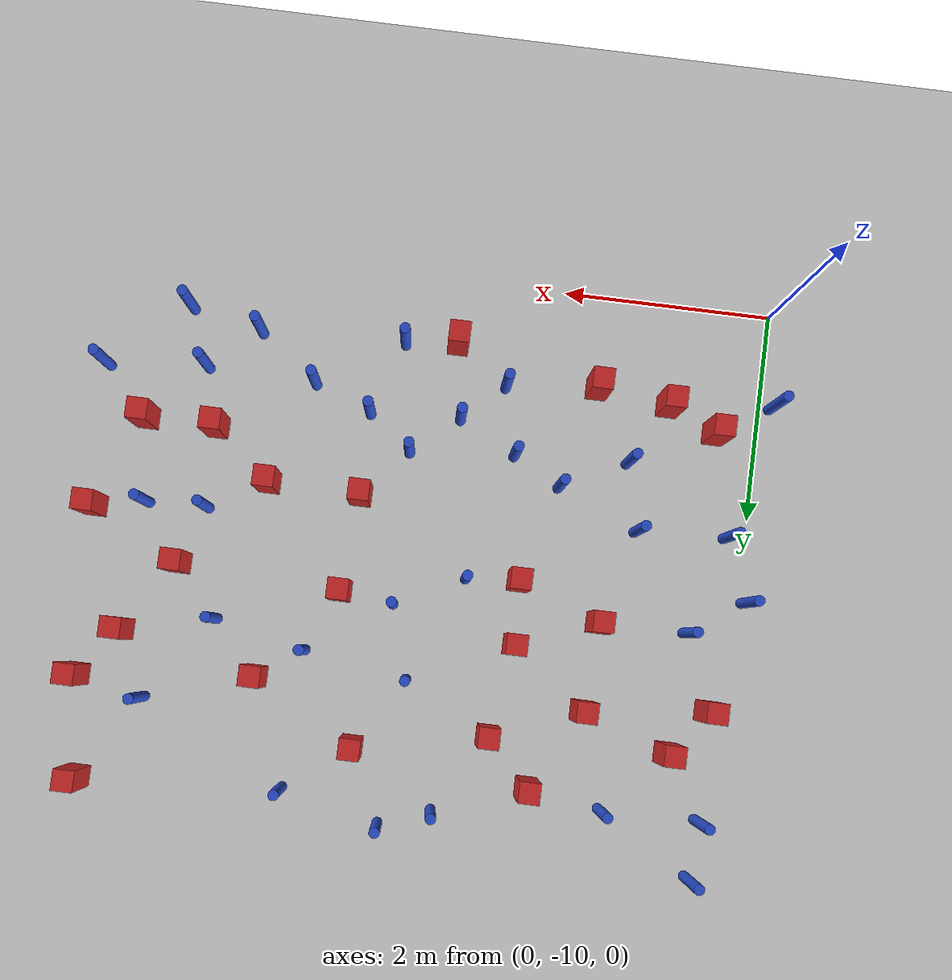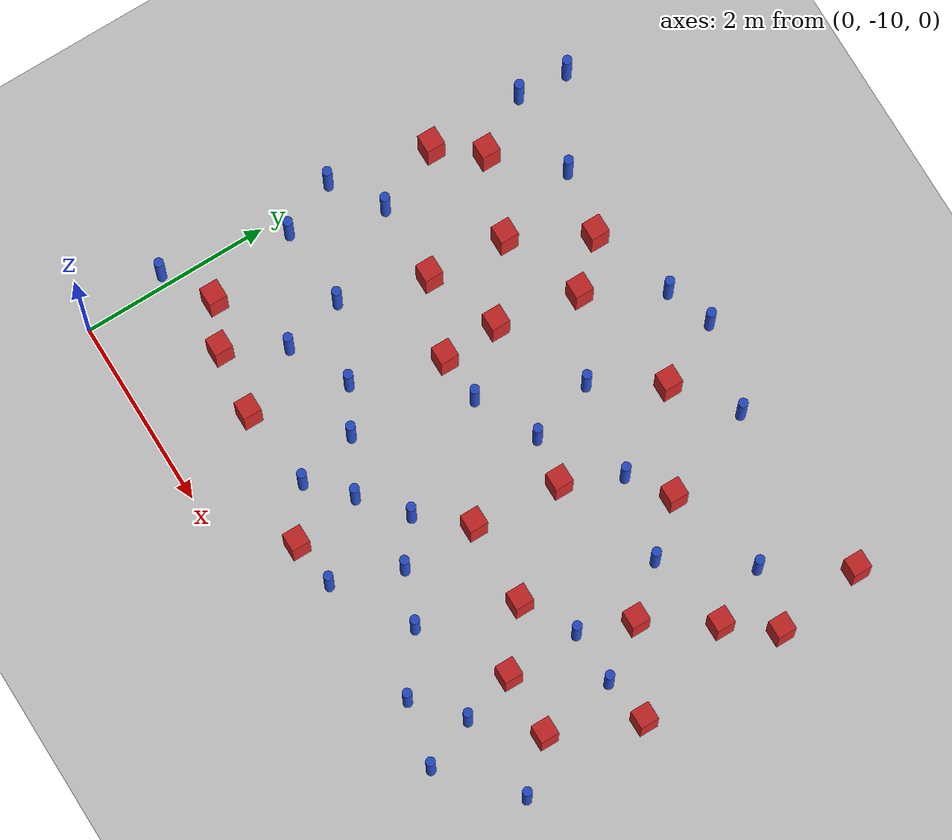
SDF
<sdf version="1.6">
 <world name="default">
  <model name="ground_plane">
   <static>1</static>
   <link name="link">
    <collision name="collision">
     <geometry><plane><normal>0 0 1</normal><size>100 100</size></plane></geometry>
     <surface><friction><ode><mu>100</mu><mu2>50</mu2></ode></friction></surface>
    </collision>
    <visual name="visual">
     <cast_shadows>0</cast_shadows>
     <geometry><plane><normal>0 0 1</normal><size>100 100</size></plane></geometry>
     <material>
      <ambient>1.0 1.0 1.0 1.0</ambient>
      <diffuse>0.8 0.8 0.8 1.0</diffuse>
      <specular>0.01 0.01 0.01 1.000000</specular>
     </material>
    </visual>
   </link>
  </model>
  <model name="pole_obstacle1">
   <static>true</static>
   <pose>1.84656176766 -8.08792494594 7.38925637345e-09 -8.47170692798e-08 1.24976764881e-08 -1.74513093027e-07</pose>
   <link name="link">
    <pose>0 0 0.3 0 -0 0</pose>
    <inertial>
     <mass>1</mass>
     <inertia><ixx>0.145833</ixx><ixy>0</ixy><ixz>0</ixz><iyy>0.145833</iyy><iyz>0</iyz><izz>0.125</izz></inertia>
    </inertial>
    <collision name="collision">
     <geometry><cylinder><radius>0.05</radius><length>.6</length></cylinder></geometry>
    </collision>
    <visual name="visual">
     <geometry><cylinder><radius>0.05</radius><length>.6</length></cylinder></geometry>
     <material>
      <script><name>Gazebo/Blue</name><uri>file://media/materials/scripts/gazebo.material</uri></script>
     </material>
    </visual>
   </link>
  </model>
  <model name="square_post_obstacle5">
   <static>true</static>
   <pose>2.09614323917 -6.53388835979 1.91545236811e-07 -7.35059704564e-06 1.12565212e-07 2.39332434364e-05</pose>
   <link name="link">
    <pose>0 0 0.25 0 -0 0</pose>
    <inertial>
     <mass>100</mass>
     <inertia>
      <ixx>0.166667</ixx>
      <ixy>0</ixy>
      <ixz>0</ixz>
      <iyy>0.166667</iyy>
      <iyz>0</iyz>
      <izz>0.166667</izz>
     </inertia>
    </inertial>
    <collision name="collision"><geometry><box><size>.2 .2 .5</size></box></geometry></collision>
    <visual name="visual">
     <geometry><box><size>.2 .2 .5</size></box></geometry>
     <material>
      <script><name>Gazebo/Red</name><uri>file://media/materials/scripts/gazebo.material</uri></script>
     </material>
    </visual>
   </link>
  </model>
  <model name="pole_obstacle7">
   <static>true</static>
   <pose>4.0634409271 -6.24032511212 7.38925637345e-09 -8.47170692796e-08 1.24976764786e-08 -1.74513093032e-07</pose>
   <link name="link">
    <pose>0 0 0.3 0 -0 0</pose>
    <inertial>
     <mass>1</mass>
     <inertia><ixx>0.145833</ixx><ixy>0</ixy><ixz>0</ixz><iyy>0.145833</iyy><iyz>0</iyz><izz>0.125</izz></inertia>
    </inertial>
    <collision name="collision">
     <geometry><cylinder><radius>0.05</radius><length>.6</length></cylinder></geometry>
    </collision>
    <visual name="visual">
     <geometry><cylinder><radius>0.05</radius><length>.6</length></cylinder></geometry>
     <material>
      <script><name>Gazebo/Blue</name><uri>file://media/materials/scripts/gazebo.material</uri></script>
     </material>
    </visual>
   </link>
  </model>
  <model name="square_post_obstacle9">
   <static>true</static>
   <pose>5.85793172006 -8.27280279421 1.91545236811e-07 -7.35059704564e-06 1.12565212e-07 2.39332434364e-05</pose>
   <link name="link">
    <pose>0 0 0.25 0 -0 0</pose>
    <inertial>
     <mass>100</mass>
     <inertia>
      <ixx>0.166667</ixx>
      <ixy>0</ixy>
      <ixz>0</ixz>
      <iyy>0.166667</iyy>
      <iyz>0</iyz>
      <izz>0.166667</izz>
     </inertia>
    </inertial>
    <collision name="collision"><geometry><box><size>.2 .2 .5</size></box></geometry></collision>
    <visual name="visual">
     <geometry><box><size>.2 .2 .5</size></box></geometry>
     <material>
      <script><name>Gazebo/Red</name><uri>file://media/materials/scripts/gazebo.material</uri></script>
     </material>
    </visual>
   </link>
  </model>
  <model name="square_post_obstacle10">
   <static>true</static>
   <pose>5.36092422646 -6.9205437314 1.91545236811e-07 -7.35059704564e-06 1.12565212e-07 2.39332434364e-05</pose>
   <link name="link">
    <pose>0 0 0.25 0 -0 0</pose>
    <inertial>
     <mass>100</mass>
     <inertia>
      <ixx>0.166667</ixx>
      <ixy>0</ixy>
      <ixz>0</ixz>
      <iyy>0.166667</iyy>
      <iyz>0</iyz>
      <izz>0.166667</izz>
     </inertia>
    </inertial>
    <collision name="collision"><geometry><box><size>.2 .2 .5</size></box></geometry></collision>
    <visual name="visual">
     <geometry><box><size>.2 .2 .5</size></box></geometry>
     <material>
      <script><name>Gazebo/Red</name><uri>file://media/materials/scripts/gazebo.material</uri></script>
     </material>
    </visual>
   </link>
  </model>
  <model name="pole_obstacle8">
   <static>true</static>
   <pose>3.30957384322 -8.24945911556 7.38925637345e-09 -8.47170692793e-08 1.24976764408e-08 -1.74513093041e-07</pose>
   <link name="link">
    <pose>0 0 0.3 0 -0 0</pose>
    <inertial>
     <mass>1</mass>
     <inertia><ixx>0.145833</ixx><ixy>0</ixy><ixz>0</ixz><iyy>0.145833</iyy><iyz>0</iyz><izz>0.125</izz></inertia>
    </inertial>
    <collision name="collision">
     <geometry><cylinder><radius>0.05</radius><length>.6</length></cylinder></geometry>
    </collision>
    <visual name="visual">
     <geometry><cylinder><radius>0.05</radius><length>.6</length></cylinder></geometry>
     <material>
      <script><name>Gazebo/Blue</name><uri>file://media/materials/scripts/gazebo.material</uri></script>
     </material>
    </visual>
   </link>
  </model>
  <model name="pole_obstacle12">
   <static>true</static>
   <pose>5.3391453261 -8.83431896908 7.38925637345e-09 -8.471706928e-08 1.24976765081e-08 -1.74513093015e-07</pose>
   <link name="link">
    <pose>0 0 0.3 0 -0 0</pose>
    <inertial>
     <mass>1</mass>
     <inertia><ixx>0.145833</ixx><ixy>0</ixy><ixz>0</ixz><iyy>0.145833</iyy><iyz>0</iyz><izz>0.125</izz></inertia>
    </inertial>
    <collision name="collision">
     <geometry><cylinder><radius>0.05</radius><length>.6</length></cylinder></geometry>
    </collision>
    <visual name="visual">
     <geometry><cylinder><radius>0.05</radius><length>.6</length></cylinder></geometry>
     <material>
      <script><name>Gazebo/Blue</name><uri>file://media/materials/scripts/gazebo.material</uri></script>
     </material>
    </visual>
   </link>
  </model>
  <model name="pole_obstacle17">
   <static>true</static>
   <pose>2.30554568047 -8.33789210548 7.38925637345e-09 -8.47170692793e-08 1.24976764408e-08 -1.74513093041e-07</pose>
   <link name="link">
    <pose>0 0 0.3 0 -0 0</pose>
    <inertial>
     <mass>1</mass>
     <inertia><ixx>0.145833</ixx><ixy>0</ixy><ixz>0</ixz><iyy>0.145833</iyy><iyz>0</iyz><izz>0.125</izz></inertia>
    </inertial>
    <collision name="collision">
     <geometry><cylinder><radius>0.05</radius><length>.6</length></cylinder></geometry>
    </collision>
    <visual name="visual">
     <geometry><cylinder><radius>0.05</radius><length>.6</length></cylinder></geometry>
     <material>
      <script><name>Gazebo/Blue</name><uri>file://media/materials/scripts/gazebo.material</uri></script>
     </material>
    </visual>
   </link>
  </model>
  <model name="pole_obstacle24">
   <static>true</static>
   <pose>3.07362462212 -6.0809814464 7.38925637345e-09 -8.47170692798e-08 1.24976765033e-08 -1.74513093019e-07</pose>
   <link name="link">
    <pose>0 0 0.3 0 -0 0</pose>
    <inertial>
     <mass>1</mass>
     <inertia><ixx>0.145833</ixx><ixy>0</ixy><ixz>0</ixz><iyy>0.145833</iyy><iyz>0</iyz><izz>0.125</izz></inertia>
    </inertial>
    <collision name="collision">
     <geometry><cylinder><radius>0.05</radius><length>.6</length></cylinder></geometry>
    </collision>
    <visual name="visual">
     <geometry><cylinder><radius>0.05</radius><length>.6</length></cylinder></geometry>
     <material>
      <script><name>Gazebo/Blue</name><uri>file://media/materials/scripts/gazebo.material</uri></script>
     </material>
    </visual>
   </link>
  </model>
  <model name="square_post_obstacle32">
   <static>true</static>
   <pose>1.59057611791 -9.09107830113 1.91545236811e-07 -7.35059704564e-06 1.12565212e-07 2.39332434364e-05</pose>
   <link name="link">
    <pose>0 0 0.25 0 -0 0</pose>
    <inertial>
     <mass>100</mass>
     <inertia>
      <ixx>0.166667</ixx>
      <ixy>0</ixy>
      <ixz>0</ixz>
      <iyy>0.166667</iyy>
      <iyz>0</iyz>
      <izz>0.166667</izz>
     </inertia>
    </inertial>
    <collision name="collision"><geometry><box><size>.2 .2 .5</size></box></geometry></collision>
    <visual name="visual">
     <geometry><box><size>.2 .2 .5</size></box></geometry>
     <material>
      <script><name>Gazebo/Red</name><uri>file://media/materials/scripts/gazebo.material</uri></script>
     </material>
    </visual>
   </link>
  </model>
  <model name="pole_obstacle33">
   <static>true</static>
   <pose>3.17560685314 -4.70304453732 7.38925637345e-09 -8.47170692798e-08 1.24976765033e-08 -1.74513093019e-07</pose>
   <link name="link">
    <pose>0 0 0.3 0 -0 0</pose>
    <inertial>
     <mass>1</mass>
     <inertia><ixx>0.145833</ixx><ixy>0</ixy><ixz>0</ixz><iyy>0.145833</iyy><iyz>0</iyz><izz>0.125</izz></inertia>
    </inertial>
    <collision name="collision">
     <geometry><cylinder><radius>0.05</radius><length>.6</length></cylinder></geometry>
    </collision>
    <visual name="visual">
     <geometry><cylinder><radius>0.05</radius><length>.6</length></cylinder></geometry>
     <material>
      <script><name>Gazebo/Blue</name><uri>file://media/materials/scripts/gazebo.material</uri></script>
     </material>
    </visual>
   </link>
  </model>
  <model name="pole_obstacle38">
   <static>true</static>
   <pose>4.28640930133 -8.79934870604 7.38925637345e-09 -8.471706928e-08 1.24976765081e-08 -1.74513093015e-07</pose>
   <link name="link">
    <pose>0 0 0.3 0 -0 0</pose>
    <inertial>
     <mass>1</mass>
     <inertia><ixx>0.145833</ixx><ixy>0</ixy><ixz>0</ixz><iyy>0.145833</iyy><iyz>0</iyz><izz>0.125</izz></inertia>
    </inertial>
    <collision name="collision">
     <geometry><cylinder><radius>0.05</radius><length>.6</length></cylinder></geometry>
    </collision>
    <visual name="visual">
     <geometry><cylinder><radius>0.05</radius><length>.6</length></cylinder></geometry>
     <material>
      <script><name>Gazebo/Blue</name><uri>file://media/materials/scripts/gazebo.material</uri></script>
     </material>
    </visual>
   </link>
  </model>
  <model name="pole_obstacle41">
   <static>true</static>
   <pose>5.73901190787 -7.46126825313 7.38925637345e-09 -8.47170692796e-08 1.24976764786e-08 -1.74513093032e-07</pose>
   <link name="link">
    <pose>0 0 0.3 0 -0 0</pose>
    <inertial>
     <mass>1</mass>
     <inertia><ixx>0.145833</ixx><ixy>0</ixy><ixz>0</ixz><iyy>0.145833</iyy><iyz>0</iyz><izz>0.125</izz></inertia>
    </inertial>
    <collision name="collision">
     <geometry><cylinder><radius>0.05</radius><length>.6</length></cylinder></geometry>
    </collision>
    <visual name="visual">
     <geometry><cylinder><radius>0.05</radius><length>.6</length></cylinder></geometry>
     <material>
      <script><name>Gazebo/Blue</name><uri>file://media/materials/scripts/gazebo.material</uri></script>
     </material>
    </visual>
   </link>
  </model>
  <model name="square_post_obstacle44">
   <static>true</static>
   <pose>0.421644965534 -8.79044486293 1.91545236811e-07 -7.35059704564e-06 1.12565212e-07 2.39332434364e-05</pose>
   <link name="link">
    <pose>0 0 0.25 0 -0 0</pose>
    <inertial>
     <mass>100</mass>
     <inertia>
      <ixx>0.166667</ixx>
      <ixy>0</ixy>
      <ixz>0</ixz>
      <iyy>0.166667</iyy>
      <iyz>0</iyz>
      <izz>0.166667</izz>
     </inertia>
    </inertial>
    <collision name="collision"><geometry><box><size>.2 .2 .5</size></box></geometry></collision>
    <visual name="visual">
     <geometry><box><size>.2 .2 .5</size></box></geometry>
     <material>
      <script><name>Gazebo/Red</name><uri>file://media/materials/scripts/gazebo.material</uri></script>
     </material>
    </visual>
   </link>
  </model>
  <model name="pole_obstacle47">
   <static>true</static>
   <pose>2.6904154207 -4.88625788499 7.38925637345e-09 -8.47170692798e-08 1.24976765033e-08 -1.74513093019e-07</pose>
   <link name="link">
    <pose>0 0 0.3 0 -0 0</pose>
    <inertial>
     <mass>1</mass>
     <inertia><ixx>0.145833</ixx><ixy>0</ixy><ixz>0</ixz><iyy>0.145833</iyy><iyz>0</iyz><izz>0.125</izz></inertia>
    </inertial>
    <collision name="collision">
     <geometry><cylinder><radius>0.05</radius><length>.6</length></cylinder></geometry>
    </collision>
    <visual name="visual">
     <geometry><cylinder><radius>0.05</radius><length>.6</length></cylinder></geometry>
     <material>
      <script><name>Gazebo/Blue</name><uri>file://media/materials/scripts/gazebo.material</uri></script>
     </material>
    </visual>
   </link>
  </model>
  <model name="pole_obstacle49">
   <static>true</static>
   <pose>2.46475214023 -8.99408442169 7.38925637345e-09 -8.47170692793e-08 1.24976764408e-08 -1.74513093041e-07</pose>
   <link name="link">
    <pose>0 0 0.3 0 -0 0</pose>
    <inertial>
     <mass>1</mass>
     <inertia><ixx>0.145833</ixx><ixy>0</ixy><ixz>0</ixz><iyy>0.145833</iyy><iyz>0</iyz><izz>0.125</izz></inertia>
    </inertial>
    <collision name="collision">
     <geometry><cylinder><radius>0.05</radius><length>.6</length></cylinder></geometry>
    </collision>
    <visual name="visual">
     <geometry><cylinder><radius>0.05</radius><length>.6</length></cylinder></geometry>
     <material>
      <script><name>Gazebo/Blue</name><uri>file://media/materials/scripts/gazebo.material</uri></script>
     </material>
    </visual>
   </link>
  </model>
  <model name="square_post_obstacle50">
   <static>true</static>
   <pose>3.71933753306 -7.77678202392 1.91545236811e-07 -7.35059704564e-06 1.12565212e-07 2.39332434364e-05</pose>
   <link name="link">
    <pose>0 0 0.25 0 -0 0</pose>
    <inertial>
     <mass>100</mass>
     <inertia>
      <ixx>0.166667</ixx>
      <ixy>0</ixy>
      <ixz>0</ixz>
      <iyy>0.166667</iyy>
      <iyz>0</iyz>
      <izz>0.166667</izz>
     </inertia>
    </inertial>
    <collision name="collision"><geometry><box><size>.2 .2 .5</size></box></geometry></collision>
    <visual name="visual">
     <geometry><box><size>.2 .2 .5</size></box></geometry>
     <material>
      <script><name>Gazebo/Red</name><uri>file://media/materials/scripts/gazebo.material</uri></script>
     </material>
    </visual>
   </link>
  </model>
  <model name="square_post_obstacle53">
   <static>true</static>
   <pose>3.79498157791 -6.84104893497 1.91545236811e-07 -7.35059704564e-06 1.12565212e-07 2.39332434364e-05</pose>
   <link name="link">
    <pose>0 0 0.25 0 -0 0</pose>
    <inertial>
     <mass>100</mass>
     <inertia>
      <ixx>0.166667</ixx>
      <ixy>0</ixy>
      <ixz>0</ixz>
      <iyy>0.166667</iyy>
      <iyz>0</iyz>
      <izz>0.166667</izz>
     </inertia>
    </inertial>
    <collision name="collision"><geometry><box><size>.2 .2 .5</size></box></geometry></collision>
    <visual name="visual">
     <geometry><box><size>.2 .2 .5</size></box></geometry>
     <material>
      <script><name>Gazebo/Red</name><uri>file://media/materials/scripts/gazebo.material</uri></script>
     </material>
    </visual>
   </link>
  </model>
  <model name="square_post_obstacle55">
   <static>true</static>
   <pose>0.546747500283 -5.70007940332 1.91545236811e-07 -7.35059704564e-06 1.12565212e-07 2.39332434364e-05</pose>
   <link name="link">
    <pose>0 0 0.25 0 -0 0</pose>
    <inertial>
     <mass>100</mass>
     <inertia>
      <ixx>0.166667</ixx>
      <ixy>0</ixy>
      <ixz>0</ixz>
      <iyy>0.166667</iyy>
      <iyz>0</iyz>
      <izz>0.166667</izz>
     </inertia>
    </inertial>
    <collision name="collision"><geometry><box><size>.2 .2 .5</size></box></geometry></collision>
    <visual name="visual">
     <geometry><box><size>.2 .2 .5</size></box></geometry>
     <material>
      <script><name>Gazebo/Red</name><uri>file://media/materials/scripts/gazebo.material</uri></script>
     </material>
    </visual>
   </link>
  </model>
  <model name="pole_obstacle55">
   <static>true</static>
   <pose>2.6259745076 -7.10265740719 7.38925637345e-09 -8.47170692798e-08 1.24976765033e-08 -1.74513093019e-07</pose>
   <link name="link">
    <pose>0 0 0.3 0 -0 0</pose>
    <inertial>
     <mass>1</mass>
     <inertia><ixx>0.145833</ixx><ixy>0</ixy><ixz>0</ixz><iyy>0.145833</iyy><iyz>0</iyz><izz>0.125</izz></inertia>
    </inertial>
    <collision name="collision">
     <geometry><cylinder><radius>0.05</radius><length>.6</length></cylinder></geometry>
    </collision>
    <visual name="visual">
     <geometry><cylinder><radius>0.05</radius><length>.6</length></cylinder></geometry>
     <material>
      <script><name>Gazebo/Blue</name><uri>file://media/materials/scripts/gazebo.material</uri></script>
     </material>
    </visual>
   </link>
  </model>
  <model name="square_post_obstacle60">
   <static>true</static>
   <pose>2.24715864053 -5.65445498987 1.91545236811e-07 -7.35059704564e-06 1.12565212e-07 2.39332434364e-05</pose>
   <link name="link">
    <pose>0 0 0.25 0 -0 0</pose>
    <inertial>
     <mass>100</mass>
     <inertia>
      <ixx>0.166667</ixx>
      <ixy>0</ixy>
      <ixz>0</ixz>
      <iyy>0.166667</iyy>
      <iyz>0</iyz>
      <izz>0.166667</izz>
     </inertia>
    </inertial>
    <collision name="collision"><geometry><box><size>.2 .2 .5</size></box></geometry></collision>
    <visual name="visual">
     <geometry><box><size>.2 .2 .5</size></box></geometry>
     <material>
      <script><name>Gazebo/Red</name><uri>file://media/materials/scripts/gazebo.material</uri></script>
     </material>
    </visual>
   </link>
  </model>
  <model name="square_post_obstacle61">
   <static>true</static>
   <pose>0.893318830847 -9.00403820079 1.91545236811e-07 -7.35059704564e-06 1.12565212e-07 2.39332434364e-05</pose>
   <link name="link">
    <pose>0 0 0.25 0 -0 0</pose>
    <inertial>
     <mass>100</mass>
     <inertia>
      <ixx>0.166667</ixx>
      <ixy>0</ixy>
      <ixz>0</ixz>
      <iyy>0.166667</iyy>
      <iyz>0</iyz>
      <izz>0.166667</izz>
     </inertia>
    </inertial>
    <collision name="collision"><geometry><box><size>.2 .2 .5</size></box></geometry></collision>
    <visual name="visual">
     <geometry><box><size>.2 .2 .5</size></box></geometry>
     <material>
      <script><name>Gazebo/Red</name><uri>file://media/materials/scripts/gazebo.material</uri></script>
     </material>
    </visual>
   </link>
  </model>
  <model name="pole_obstacle58">
   <static>true</static>
   <pose>0.232287770855 -4.56479041535 7.38925637345e-09 -8.471706928e-08 1.24976765124e-08 -1.74513093014e-07</pose>
   <link name="link">
    <pose>0 0 0.3 0 -0 0</pose>
    <inertial>
     <mass>1</mass>
     <inertia><ixx>0.145833</ixx><ixy>0</ixy><ixz>0</ixz><iyy>0.145833</iyy><iyz>0</iyz><izz>0.125</izz></inertia>
    </inertial>
    <collision name="collision">
     <geometry><cylinder><radius>0.05</radius><length>.6</length></cylinder></geometry>
    </collision>
    <visual name="visual">
     <geometry><cylinder><radius>0.05</radius><length>.6</length></cylinder></geometry>
     <material>
      <script><name>Gazebo/Blue</name><uri>file://media/materials/scripts/gazebo.material</uri></script>
     </material>
    </visual>
   </link>
  </model>
  <model name="square_post_obstacle64">
   <static>true</static>
   <pose>1.82378218965 -5.21049882655 1.91545236811e-07 -7.35059704564e-06 1.12565212e-07 2.39332434364e-05</pose>
   <link name="link">
    <pose>0 0 0.25 0 -0 0</pose>
    <inertial>
     <mass>100</mass>
     <inertia>
      <ixx>0.166667</ixx>
      <ixy>0</ixy>
      <ixz>0</ixz>
      <iyy>0.166667</iyy>
      <iyz>0</iyz>
      <izz>0.166667</izz>
     </inertia>
    </inertial>
    <collision name="collision"><geometry><box><size>.2 .2 .5</size></box></geometry></collision>
    <visual name="visual">
     <geometry><box><size>.2 .2 .5</size></box></geometry>
     <material>
      <script><name>Gazebo/Red</name><uri>file://media/materials/scripts/gazebo.material</uri></script>
     </material>
    </visual>
   </link>
  </model>
  <model name="square_post_obstacle65">
   <static>true</static>
   <pose>6.24072449241 -7.36965737709 1.91545236811e-07 -7.35059704564e-06 1.12565212e-07 2.39332434364e-05</pose>
   <link name="link">
    <pose>0 0 0.25 0 -0 0</pose>
    <inertial>
     <mass>100</mass>
     <inertia>
      <ixx>0.166667</ixx>
      <ixy>0</ixy>
      <ixz>0</ixz>
      <iyy>0.166667</iyy>
      <iyz>0</iyz>
      <izz>0.166667</izz>
     </inertia>
    </inertial>
    <collision name="collision"><geometry><box><size>.2 .2 .5</size></box></geometry></collision>
    <visual name="visual">
     <geometry><box><size>.2 .2 .5</size></box></geometry>
     <material>
      <script><name>Gazebo/Red</name><uri>file://media/materials/scripts/gazebo.material</uri></script>
     </material>
    </visual>
   </link>
  </model>
  <model name="pole_obstacle64">
   <static>true</static>
   <pose>3.72890523248 -8.57860771985 7.38925637345e-09 -8.47170692793e-08 1.24976764408e-08 -1.74513093041e-07</pose>
   <link name="link">
    <pose>0 0 0.3 0 -0 0</pose>
    <inertial>
     <mass>1</mass>
     <inertia><ixx>0.145833</ixx><ixy>0</ixy><ixz>0</ixz><iyy>0.145833</iyy><iyz>0</iyz><izz>0.125</izz></inertia>
    </inertial>
    <collision name="collision">
     <geometry><cylinder><radius>0.05</radius><length>.6</length></cylinder></geometry>
    </collision>
    <visual name="visual">
     <geometry><cylinder><radius>0.05</radius><length>.6</length></cylinder></geometry>
     <material>
      <script><name>Gazebo/Blue</name><uri>file://media/materials/scripts/gazebo.material</uri></script>
     </material>
    </visual>
   </link>
  </model>
  <model name="pole_obstacle70">
   <static>true</static>
   <pose>0.492945236174 -6.84806069235 7.38925637345e-09 -8.471706928e-08 1.24976765095e-08 -1.74513093014e-07</pose>
   <link name="link">
    <pose>0 0 0.3 0 -0 0</pose>
    <inertial>
     <mass>1</mass>
     <inertia><ixx>0.145833</ixx><ixy>0</ixy><ixz>0</ixz><iyy>0.145833</iyy><iyz>0</iyz><izz>0.125</izz></inertia>
    </inertial>
    <collision name="collision">
     <geometry><cylinder><radius>0.05</radius><length>.6</length></cylinder></geometry>
    </collision>
    <visual name="visual">
     <geometry><cylinder><radius>0.05</radius><length>.6</length></cylinder></geometry>
     <material>
      <script><name>Gazebo/Blue</name><uri>file://media/materials/scripts/gazebo.material</uri></script>
     </material>
    </visual>
   </link>
  </model>
  <model name="pole_obstacle71">
   <static>true</static>
   <pose>3.4758311321 -9.29609430999 7.38925637345e-09 -8.47170692793e-08 1.24976764408e-08 -1.74513093041e-07</pose>
   <link name="link">
    <pose>0 0 0.3 0 -0 0</pose>
    <inertial>
     <mass>1</mass>
     <inertia><ixx>0.145833</ixx><ixy>0</ixy><ixz>0</ixz><iyy>0.145833</iyy><iyz>0</iyz><izz>0.125</izz></inertia>
    </inertial>
    <collision name="collision">
     <geometry><cylinder><radius>0.05</radius><length>.6</length></cylinder></geometry>
    </collision>
    <visual name="visual">
     <geometry><cylinder><radius>0.05</radius><length>.6</length></cylinder></geometry>
     <material>
      <script><name>Gazebo/Blue</name><uri>file://media/materials/scripts/gazebo.material</uri></script>
     </material>
    </visual>
   </link>
  </model>
  <model name="pole_obstacle80">
   <static>true</static>
   <pose>-0.0947098394262 -9.10271091327 7.38925637345e-09 -8.47170692796e-08 1.24976764728e-08 -1.74513093036e-07</pose>
   <link name="link">
    <pose>0 0 0.3 0 -0 0</pose>
    <inertial>
     <mass>1</mass>
     <inertia><ixx>0.145833</ixx><ixy>0</ixy><ixz>0</ixz><iyy>0.145833</iyy><iyz>0</iyz><izz>0.125</izz></inertia>
    </inertial>
    <collision name="collision">
     <geometry><cylinder><radius>0.05</radius><length>.6</length></cylinder></geometry>
    </collision>
    <visual name="visual">
     <geometry><cylinder><radius>0.05</radius><length>.6</length></cylinder></geometry>
     <material>
      <script><name>Gazebo/Blue</name><uri>file://media/materials/scripts/gazebo.material</uri></script>
     </material>
    </visual>
   </link>
  </model>
  <model name="pole_obstacle86">
   <static>true</static>
   <pose>1.21936587779 -8.40301064965 7.38925637345e-09 -8.47170692798e-08 1.24976764881e-08 -1.74513093027e-07</pose>
   <link name="link">
    <pose>0 0 0.3 0 -0 0</pose>
    <inertial>
     <mass>1</mass>
     <inertia><ixx>0.145833</ixx><ixy>0</ixy><ixz>0</ixz><iyy>0.145833</iyy><iyz>0</iyz><izz>0.125</izz></inertia>
    </inertial>
    <collision name="collision">
     <geometry><cylinder><radius>0.05</radius><length>.6</length></cylinder></geometry>
    </collision>
    <visual name="visual">
     <geometry><cylinder><radius>0.05</radius><length>.6</length></cylinder></geometry>
     <material>
      <script><name>Gazebo/Blue</name><uri>file://media/materials/scripts/gazebo.material</uri></script>
     </material>
    </visual>
   </link>
  </model>
  <model name="pole_obstacle90">
   <static>true</static>
   <pose>4.11685417981 -4.92197380038 7.38925637345e-09 -8.47170692796e-08 1.24976764786e-08 -1.74513093032e-07</pose>
   <link name="link">
    <pose>0 0 0.3 0 -0 0</pose>
    <inertial>
     <mass>1</mass>
     <inertia><ixx>0.145833</ixx><ixy>0</ixy><ixz>0</ixz><iyy>0.145833</iyy><iyz>0</iyz><izz>0.125</izz></inertia>
    </inertial>
    <collision name="collision">
     <geometry><cylinder><radius>0.05</radius><length>.6</length></cylinder></geometry>
    </collision>
    <visual name="visual">
     <geometry><cylinder><radius>0.05</radius><length>.6</length></cylinder></geometry>
     <material>
      <script><name>Gazebo/Blue</name><uri>file://media/materials/scripts/gazebo.material</uri></script>
     </material>
    </visual>
   </link>
  </model>
  <model name="square_post_obstacle86">
   <static>true</static>
   <pose>6.04493994401 -4.79788419921 1.91545236811e-07 -7.35059704564e-06 1.12565212e-07 2.39332434364e-05</pose>
   <link name="link">
    <pose>0 0 0.25 0 -0 0</pose>
    <inertial>
     <mass>100</mass>
     <inertia>
      <ixx>0.166667</ixx>
      <ixy>0</ixy>
      <ixz>0</ixz>
      <iyy>0.166667</iyy>
      <iyz>0</iyz>
      <izz>0.166667</izz>
     </inertia>
    </inertial>
    <collision name="collision"><geometry><box><size>.2 .2 .5</size></box></geometry></collision>
    <visual name="visual">
     <geometry><box><size>.2 .2 .5</size></box></geometry>
     <material>
      <script><name>Gazebo/Red</name><uri>file://media/materials/scripts/gazebo.material</uri></script>
     </material>
    </visual>
   </link>
  </model>
  <model name="square_post_obstacle87">
   <static>true</static>
   <pose>4.49254431699 -5.94307379859 1.91545236811e-07 -7.35059704564e-06 1.12565212e-07 2.39332434364e-05</pose>
   <link name="link">
    <pose>0 0 0.25 0 -0 0</pose>
    <inertial>
     <mass>100</mass>
     <inertia>
      <ixx>0.166667</ixx>
      <ixy>0</ixy>
      <ixz>0</ixz>
      <iyy>0.166667</iyy>
      <iyz>0</iyz>
      <izz>0.166667</izz>
     </inertia>
    </inertial>
    <collision name="collision"><geometry><box><size>.2 .2 .5</size></box></geometry></collision>
    <visual name="visual">
     <geometry><box><size>.2 .2 .5</size></box></geometry>
     <material>
      <script><name>Gazebo/Red</name><uri>file://media/materials/scripts/gazebo.material</uri></script>
     </material>
    </visual>
   </link>
  </model>
  <model name="pole_obstacle101">
   <static>true</static>
   <pose>6.29752738975 -8.74358053794 7.38925637345e-09 -8.471706928e-08 1.24976765081e-08 -1.74513093015e-07</pose>
   <link name="link">
    <pose>0 0 0.3 0 -0 0</pose>
    <inertial>
     <mass>1</mass>
     <inertia><ixx>0.145833</ixx><ixy>0</ixy><ixz>0</ixz><iyy>0.145833</iyy><iyz>0</iyz><izz>0.125</izz></inertia>
    </inertial>
    <collision name="collision">
     <geometry><cylinder><radius>0.05</radius><length>.6</length></cylinder></geometry>
    </collision>
    <visual name="visual">
     <geometry><cylinder><radius>0.05</radius><length>.6</length></cylinder></geometry>
     <material>
      <script><name>Gazebo/Blue</name><uri>file://media/materials/scripts/gazebo.material</uri></script>
     </material>
    </visual>
   </link>
  </model>
  <model name="square_post_obstacle94">
   <static>true</static>
   <pose>2.12605041888 -7.14439833441 1.91545236811e-07 -7.35059704564e-06 1.12565212e-07 2.39332434364e-05</pose>
   <link name="link">
    <pose>0 0 0.25 0 -0 0</pose>
    <inertial>
     <mass>100</mass>
     <inertia>
      <ixx>0.166667</ixx>
      <ixy>0</ixy>
      <ixz>0</ixz>
      <iyy>0.166667</iyy>
      <iyz>0</iyz>
      <izz>0.166667</izz>
     </inertia>
    </inertial>
    <collision name="collision"><geometry><box><size>.2 .2 .5</size></box></geometry></collision>
    <visual name="visual">
     <geometry><box><size>.2 .2 .5</size></box></geometry>
     <material>
      <script><name>Gazebo/Red</name><uri>file://media/materials/scripts/gazebo.material</uri></script>
     </material>
    </visual>
   </link>
  </model>
  <model name="square_post_obstacle99">
   <static>true</static>
   <pose>6.18230421885 -5.75498601885 1.91545236811e-07 -7.35059704564e-06 1.12565212e-07 2.39332434364e-05</pose>
   <link name="link">
    <pose>0 0 0.25 0 -0 0</pose>
    <inertial>
     <mass>100</mass>
     <inertia>
      <ixx>0.166667</ixx>
      <ixy>0</ixy>
      <ixz>0</ixz>
      <iyy>0.166667</iyy>
      <iyz>0</iyz>
      <izz>0.166667</izz>
     </inertia>
    </inertial>
    <collision name="collision"><geometry><box><size>.2 .2 .5</size></box></geometry></collision>
    <visual name="visual">
     <geometry><box><size>.2 .2 .5</size></box></geometry>
     <material>
      <script><name>Gazebo/Red</name><uri>file://media/materials/scripts/gazebo.material</uri></script>
     </material>
    </visual>
   </link>
  </model>
  <model name="square_post_obstacle108">
   <static>true</static>
   <pose>1.32946630928 -6.84078769241 1.91545236811e-07 -7.35059704564e-06 1.12565212e-07 2.39332434364e-05</pose>
   <link name="link">
    <pose>0 0 0.25 0 -0 0</pose>
    <inertial>
     <mass>100</mass>
     <inertia>
      <ixx>0.166667</ixx>
      <ixy>0</ixy>
      <ixz>0</ixz>
      <iyy>0.166667</iyy>
      <iyz>0</iyz>
      <izz>0.166667</izz>
     </inertia>
    </inertial>
    <collision name="collision"><geometry><box><size>.2 .2 .5</size></box></geometry></collision>
    <visual name="visual">
     <geometry><box><size>.2 .2 .5</size></box></geometry>
     <material>
      <script><name>Gazebo/Red</name><uri>file://media/materials/scripts/gazebo.material</uri></script>
     </material>
    </visual>
   </link>
  </model>
  <model name="pole_obstacle123">
   <static>true</static>
   <pose>-0.0298299162971 -7.20078988467 7.38925637345e-09 -8.471706928e-08 1.24976765096e-08 -1.74513093016e-07</pose>
   <link name="link">
    <pose>0 0 0.3 0 -0 0</pose>
    <inertial>
     <mass>1</mass>
     <inertia><ixx>0.145833</ixx><ixy>0</ixy><ixz>0</ixz><iyy>0.145833</iyy><iyz>0</iyz><izz>0.125</izz></inertia>
    </inertial>
    <collision name="collision">
     <geometry><cylinder><radius>0.05</radius><length>.6</length></cylinder></geometry>
    </collision>
    <visual name="visual">
     <geometry><cylinder><radius>0.05</radius><length>.6</length></cylinder></geometry>
     <material>
      <script><name>Gazebo/Blue</name><uri>file://media/materials/scripts/gazebo.material</uri></script>
     </material>
    </visual>
   </link>
  </model>
  <model name="pole_obstacle124">
   <static>true</static>
   <pose>5.53069025446 -5.61191967254 7.38925637345e-09 -8.47170692796e-08 1.24976764786e-08 -1.74513093032e-07</pose>
   <link name="link">
    <pose>0 0 0.3 0 -0 0</pose>
    <inertial>
     <mass>1</mass>
     <inertia><ixx>0.145833</ixx><ixy>0</ixy><ixz>0</ixz><iyy>0.145833</iyy><iyz>0</iyz><izz>0.125</izz></inertia>
    </inertial>
    <collision name="collision">
     <geometry><cylinder><radius>0.05</radius><length>.6</length></cylinder></geometry>
    </collision>
    <visual name="visual">
     <geometry><cylinder><radius>0.05</radius><length>.6</length></cylinder></geometry>
     <material>
      <script><name>Gazebo/Blue</name><uri>file://media/materials/scripts/gazebo.material</uri></script>
     </material>
    </visual>
   </link>
  </model>
  <model name="pole_obstacle136">
   <static>true</static>
   <pose>0.195291657671 -5.10384794296 7.38925637345e-09 -8.47170692799e-08 1.24976765068e-08 -1.74513093018e-07</pose>
   <link name="link">
    <pose>0 0 0.3 0 -0 0</pose>
    <inertial>
     <mass>1</mass>
     <inertia><ixx>0.145833</ixx><ixy>0</ixy><ixz>0</ixz><iyy>0.145833</iyy><iyz>0</iyz><izz>0.125</izz></inertia>
    </inertial>
    <collision name="collision">
     <geometry><cylinder><radius>0.05</radius><length>.6</length></cylinder></geometry>
    </collision>
    <visual name="visual">
     <geometry><cylinder><radius>0.05</radius><length>.6</length></cylinder></geometry>
     <material>
      <script><name>Gazebo/Blue</name><uri>file://media/materials/scripts/gazebo.material</uri></script>
     </material>
    </visual>
   </link>
  </model>
  <model name="square_post_obstacle122">
   <static>true</static>
   <pose>5.17384624651 -8.26536545046 1.91545236811e-07 -7.35059704564e-06 1.12565212e-07 2.39332434364e-05</pose>
   <link name="link">
    <pose>0 0 0.25 0 -0 0</pose>
    <inertial>
     <mass>100</mass>
     <inertia>
      <ixx>0.166667</ixx>
      <ixy>0</ixy>
      <ixz>0</ixz>
      <iyy>0.166667</iyy>
      <iyz>0</iyz>
      <izz>0.166667</izz>
     </inertia>
    </inertial>
    <collision name="collision"><geometry><box><size>.2 .2 .5</size></box></geometry></collision>
    <visual name="visual">
     <geometry><box><size>.2 .2 .5</size></box></geometry>
     <material>
      <script><name>Gazebo/Red</name><uri>file://media/materials/scripts/gazebo.material</uri></script>
     </material>
    </visual>
   </link>
  </model>
  <model name="square_post_obstacle134">
   <static>true</static>
   <pose>2.9715221089 -9.36289687728 1.91545236811e-07 -7.35059704564e-06 1.12565212e-07 2.39332434364e-05</pose>
   <link name="link">
    <pose>0 0 0.25 0 -0 0</pose>
    <inertial>
     <mass>100</mass>
     <inertia>
      <ixx>0.166667</ixx>
      <ixy>0</ixy>
      <ixz>0</ixz>
      <iyy>0.166667</iyy>
      <iyz>0</iyz>
      <izz>0.166667</izz>
     </inertia>
    </inertial>
    <collision name="collision"><geometry><box><size>.2 .2 .5</size></box></geometry></collision>
    <visual name="visual">
     <geometry><box><size>.2 .2 .5</size></box></geometry>
     <material>
      <script><name>Gazebo/Red</name><uri>file://media/materials/scripts/gazebo.material</uri></script>
     </material>
    </visual>
   </link>
  </model>
  <model name="pole_obstacle147">
   <static>true</static>
   <pose>1.1162877202 -5.09213299845 7.38925637345e-09 -8.47170692799e-08 1.24976765033e-08 -1.74513093018e-07</pose>
   <link name="link">
    <pose>0 0 0.3 0 -0 0</pose>
    <inertial>
     <mass>1</mass>
     <inertia><ixx>0.145833</ixx><ixy>0</ixy><ixz>0</ixz><iyy>0.145833</iyy><iyz>0</iyz><izz>0.125</izz></inertia>
    </inertial>
    <collision name="collision">
     <geometry><cylinder><radius>0.05</radius><length>.6</length></cylinder></geometry>
    </collision>
    <visual name="visual">
     <geometry><cylinder><radius>0.05</radius><length>.6</length></cylinder></geometry>
     <material>
      <script><name>Gazebo/Blue</name><uri>file://media/materials/scripts/gazebo.material</uri></script>
     </material>
    </visual>
   </link>
  </model>
  <model name="pole_obstacle150">
   <static>true</static>
   <pose>4.94070653763 -6.43292556202 7.38925637345e-09 -8.47170692796e-08 1.24976764786e-08 -1.74513093032e-07</pose>
   <link name="link">
    <pose>0 0 0.3 0 -0 0</pose>
    <inertial>
     <mass>1</mass>
     <inertia><ixx>0.145833</ixx><ixy>0</ixy><ixz>0</ixz><iyy>0.145833</iyy><iyz>0</iyz><izz>0.125</izz></inertia>
    </inertial>
    <collision name="collision">
     <geometry><cylinder><radius>0.05</radius><length>.6</length></cylinder></geometry>
    </collision>
    <visual name="visual">
     <geometry><cylinder><radius>0.05</radius><length>.6</length></cylinder></geometry>
     <material>
      <script><name>Gazebo/Blue</name><uri>file://media/materials/scripts/gazebo.material</uri></script>
     </material>
    </visual>
   </link>
  </model>
  <model name="pole_obstacle153">
   <static>true</static>
   <pose>3.28423503606 -6.77710401217 7.38925637345e-09 -8.47170692798e-08 1.24976765033e-08 -1.74513093019e-07</pose>
   <link name="link">
    <pose>0 0 0.3 0 -0 0</pose>
    <inertial>
     <mass>1</mass>
     <inertia><ixx>0.145833</ixx><ixy>0</ixy><ixz>0</ixz><iyy>0.145833</iyy><iyz>0</iyz><izz>0.125</izz></inertia>
    </inertial>
    <collision name="collision">
     <geometry><cylinder><radius>0.05</radius><length>.6</length></cylinder></geometry>
    </collision>
    <visual name="visual">
     <geometry><cylinder><radius>0.05</radius><length>.6</length></cylinder></geometry>
     <material>
      <script><name>Gazebo/Blue</name><uri>file://media/materials/scripts/gazebo.material</uri></script>
     </material>
    </visual>
   </link>
  </model>
  <model name="square_post_obstacle149">
   <static>true</static>
   <pose>0.204548634193 -6.13711922025 1.91545236811e-07 -7.35059704564e-06 1.12565212e-07 2.39332434364e-05</pose>
   <link name="link">
    <pose>0 0 0.25 0 -0 0</pose>
    <inertial>
     <mass>100</mass>
     <inertia>
      <ixx>0.166667</ixx>
      <ixy>0</ixy>
      <ixz>0</ixz>
      <iyy>0.166667</iyy>
      <iyz>0</iyz>
      <izz>0.166667</izz>
     </inertia>
    </inertial>
    <collision name="collision"><geometry><box><size>.2 .2 .5</size></box></geometry></collision>
    <visual name="visual">
     <geometry><box><size>.2 .2 .5</size></box></geometry>
     <material>
      <script><name>Gazebo/Red</name><uri>file://media/materials/scripts/gazebo.material</uri></script>
     </material>
    </visual>
   </link>
  </model>
  <model name="square_post_obstacle151">
   <static>true</static>
   <pose>5.81958389304 -6.2291326157 1.91545236811e-07 -7.35059704564e-06 1.12565212e-07 2.39332434364e-05</pose>
   <link name="link">
    <pose>0 0 0.25 0 -0 0</pose>
    <inertial>
     <mass>100</mass>
     <inertia>
      <ixx>0.166667</ixx>
      <ixy>0</ixy>
      <ixz>0</ixz>
      <iyy>0.166667</iyy>
      <iyz>0</iyz>
      <izz>0.166667</izz>
     </inertia>
    </inertial>
    <collision name="collision"><geometry><box><size>.2 .2 .5</size></box></geometry></collision>
    <visual name="visual">
     <geometry><box><size>.2 .2 .5</size></box></geometry>
     <material>
      <script><name>Gazebo/Red</name><uri>file://media/materials/scripts/gazebo.material</uri></script>
     </material>
    </visual>
   </link>
  </model>
  <model name="pole_obstacle169">
   <static>true</static>
   <pose>4.86614820158 -9.23737844228 7.38925637345e-09 -8.471706928e-08 1.24976765081e-08 -1.74513093015e-07</pose>
   <link name="link">
    <pose>0 0 0.3 0 -0 0</pose>
    <inertial>
     <mass>1</mass>
     <inertia><ixx>0.145833</ixx><ixy>0</ixy><ixz>0</ixz><iyy>0.145833</iyy><iyz>0</iyz><izz>0.125</izz></inertia>
    </inertial>
    <collision name="collision">
     <geometry><cylinder><radius>0.05</radius><length>.6</length></cylinder></geometry>
    </collision>
    <visual name="visual">
     <geometry><cylinder><radius>0.05</radius><length>.6</length></cylinder></geometry>
     <material>
      <script><name>Gazebo/Blue</name><uri>file://media/materials/scripts/gazebo.material</uri></script>
     </material>
    </visual>
   </link>
  </model>
  <model name="square_post_obstacle163">
   <static>true</static>
   <pose>4.60898034538 -7.79365377082 1.91545236811e-07 -7.35059704564e-06 1.12565212e-07 2.39332434364e-05</pose>
   <link name="link">
    <pose>0 0 0.25 0 -0 0</pose>
    <inertial>
     <mass>100</mass>
     <inertia>
      <ixx>0.166667</ixx>
      <ixy>0</ixy>
      <ixz>0</ixz>
      <iyy>0.166667</iyy>
      <iyz>0</iyz>
      <izz>0.166667</izz>
     </inertia>
    </inertial>
    <collision name="collision"><geometry><box><size>.2 .2 .5</size></box></geometry></collision>
    <visual name="visual">
     <geometry><box><size>.2 .2 .5</size></box></geometry>
     <material>
      <script><name>Gazebo/Red</name><uri>file://media/materials/scripts/gazebo.material</uri></script>
     </material>
    </visual>
   </link>
  </model>
  <model name="pole_obstacle176">
   <static>true</static>
   <pose>5.16079423189 -7.47855829368 7.38925637345e-09 -8.47170692796e-08 1.24976764786e-08 -1.74513093032e-07</pose>
   <link name="link">
    <pose>0 0 0.3 0 -0 0</pose>
    <inertial>
     <mass>1</mass>
     <inertia><ixx>0.145833</ixx><ixy>0</ixy><ixz>0</ixz><iyy>0.145833</iyy><iyz>0</iyz><izz>0.125</izz></inertia>
    </inertial>
    <collision name="collision">
     <geometry><cylinder><radius>0.05</radius><length>.6</length></cylinder></geometry>
    </collision>
    <visual name="visual">
     <geometry><cylinder><radius>0.05</radius><length>.6</length></cylinder></geometry>
     <material>
      <script><name>Gazebo/Blue</name><uri>file://media/materials/scripts/gazebo.material</uri></script>
     </material>
    </visual>
   </link>
  </model>
  <model name="square_post_obstacle165">
   <static>true</static>
   <pose>1.38411327202 -5.996490555 1.91545236811e-07 -7.35059704564e-06 1.12565212e-07 2.39332434364e-05</pose>
   <link name="link">
    <pose>0 0 0.25 0 -0 0</pose>
    <inertial>
     <mass>100</mass>
     <inertia>
      <ixx>0.166667</ixx>
      <ixy>0</ixy>
      <ixz>0</ixz>
      <iyy>0.166667</iyy>
      <iyz>0</iyz>
      <izz>0.166667</izz>
     </inertia>
    </inertial>
    <collision name="collision"><geometry><box><size>.2 .2 .5</size></box></geometry></collision>
    <visual name="visual">
     <geometry><box><size>.2 .2 .5</size></box></geometry>
     <material>
      <script><name>Gazebo/Red</name><uri>file://media/materials/scripts/gazebo.material</uri></script>
     </material>
    </visual>
   </link>
  </model>
  <model name="pole_obstacle184">
   <static>true</static>
   <pose>5.56097395106 -9.39301935404 7.38925637345e-09 -8.471706928e-08 1.24976765081e-08 -1.74513093015e-07</pose>
   <link name="link">
    <pose>0 0 0.3 0 -0 0</pose>
    <inertial>
     <mass>1</mass>
     <inertia><ixx>0.145833</ixx><ixy>0</ixy><ixz>0</ixz><iyy>0.145833</iyy><iyz>0</iyz><izz>0.125</izz></inertia>
    </inertial>
    <collision name="collision">
     <geometry><cylinder><radius>0.05</radius><length>.6</length></cylinder></geometry>
    </collision>
    <visual name="visual">
     <geometry><cylinder><radius>0.05</radius><length>.6</length></cylinder></geometry>
     <material>
      <script><name>Gazebo/Blue</name><uri>file://media/materials/scripts/gazebo.material</uri></script>
     </material>
    </visual>
   </link>
  </model>
  <model name="square_post_obstacle208">
   <static>true</static>
   <pose>3.50378768246 -5.39618166287 1.91545236811e-07 -7.35059704564e-06 1.12565212e-07 2.39332434364e-05</pose>
   <link name="link">
    <pose>0 0 0.25 0 -0 0</pose>
    <inertial>
     <mass>100</mass>
     <inertia>
      <ixx>0.166667</ixx>
      <ixy>0</ixy>
      <ixz>0</ixz>
      <iyy>0.166667</iyy>
      <iyz>0</iyz>
      <izz>0.166667</izz>
     </inertia>
    </inertial>
    <collision name="collision"><geometry><box><size>.2 .2 .5</size></box></geometry></collision>
    <visual name="visual">
     <geometry><box><size>.2 .2 .5</size></box></geometry>
     <material>
      <script><name>Gazebo/Red</name><uri>file://media/materials/scripts/gazebo.material</uri></script>
     </material>
    </visual>
   </link>
  </model>
  <model name="pole_obstacle201">
   <static>true</static>
   <pose>0.208912009575 -7.79874997922 7.38925637345e-09 -8.471706928e-08 1.24976765124e-08 -1.74513093014e-07</pose>
   <link name="link">
    <pose>0 0 0.3 0 -0 0</pose>
    <inertial>
     <mass>1</mass>
     <inertia><ixx>0.145833</ixx><ixy>0</ixy><ixz>0</ixz><iyy>0.145833</iyy><iyz>0</iyz><izz>0.125</izz></inertia>
    </inertial>
    <collision name="collision">
     <geometry><cylinder><radius>0.05</radius><length>.6</length></cylinder></geometry>
    </collision>
    <visual name="visual">
     <geometry><cylinder><radius>0.05</radius><length>.6</length></cylinder></geometry>
     <material>
      <script><name>Gazebo/Blue</name><uri>file://media/materials/scripts/gazebo.material</uri></script>
     </material>
    </visual>
   </link>
  </model>
  <model name="pole_obstacle208">
   <static>true</static>
   <pose>1.06749000957 -7.75371997922 7.38925637345e-09 -8.47170692799e-08 1.24976765052e-08 -1.74513093018e-07</pose>
   <link name="link">
    <pose>0 0 0.3 0 -0 0</pose>
    <inertial>
     <mass>1</mass>
     <inertia><ixx>0.145833</ixx><ixy>0</ixy><ixz>0</ixz><iyy>0.145833</iyy><iyz>0</iyz><izz>0.125</izz></inertia>
    </inertial>
    <collision name="collision">
     <geometry><cylinder><radius>0.05</radius><length>.6</length></cylinder></geometry>
    </collision>
    <visual name="visual">
     <geometry><cylinder><radius>0.05</radius><length>.6</length></cylinder></geometry>
     <material>
      <script><name>Gazebo/Blue</name><uri>file://media/materials/scripts/gazebo.material</uri></script>
     </material>
    </visual>
   </link>
  </model>
  <model name="pole_obstacle235">
   <static>true</static>
   <pose>2.86149000957 -8.62722997922 7.38925637345e-09 -8.47170692793e-08 1.24976764408e-08 -1.74513093041e-07</pose>
   <link name="link">
    <pose>0 0 0.3 0 -0 0</pose>
    <inertial>
     <mass>1</mass>
     <inertia><ixx>0.145833</ixx><ixy>0</ixy><ixz>0</ixz><iyy>0.145833</iyy><iyz>0</iyz><izz>0.125</izz></inertia>
    </inertial>
    <collision name="collision">
     <geometry><cylinder><radius>0.05</radius><length>.6</length></cylinder></geometry>
    </collision>
    <visual name="visual">
     <geometry><cylinder><radius>0.05</radius><length>.6</length></cylinder></geometry>
     <material>
      <script><name>Gazebo/Blue</name><uri>file://media/materials/scripts/gazebo.material</uri></script>
     </material>
    </visual>
   </link>
  </model>
 </world>
</sdf>
